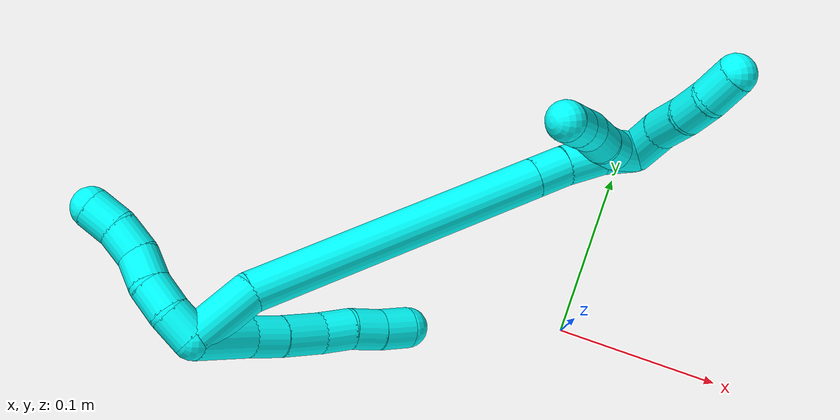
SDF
<sdf version="1.7">
 <world name="default">
  <model name="3">
   <static>0</static>
   <link name="3">
    <collision name="collision-cylinder-e_1_2_8">
     <pose>-0.001709 -0.00235 -0.019941 3.02429 -0.084888 -1.25235</pose>
     <geometry><cylinder><radius>0.0125</radius><length>0.040302</length></cylinder></geometry>
     <surface>
      <friction><ode><mu>1.16</mu><mu2>1.16</mu2><slip1>0</slip1><slip2>0</slip2></ode></friction>
      <contact><ode><kp>1e+06</kp><kd>1</kd><max_vel>0</max_vel><min_depth>0.001</min_depth></ode></contact>
     </surface>
    </collision>
    <visual name="visual-cylinder-e_1_2_8">
     <pose>-0.001709 -0.00235 -0.019941 3.02429 -0.084888 -1.25235</pose>
     <geometry><cylinder><radius>0.0125</radius><length>0.040302</length></cylinder></geometry>
     <material><ambient>0.003922 1 0.996078 1</ambient></material>
    </visual>
    <collision name="collision-cylinder-e_2_8_9">
     <pose>-0.002081 -0.00613 -0.050691 3.01007 0.121935 1.495</pose>
     <geometry><cylinder><radius>0.0125</radius><length>0.02197</length></cylinder></geometry>
     <surface>
      <friction><ode><mu>1.16</mu><mu2>1.16</mu2><slip1>0</slip1><slip2>0</slip2></ode></friction>
      <contact><ode><kp>1e+06</kp><kd>1</kd><max_vel>0</max_vel><min_depth>0.001</min_depth></ode></contact>
     </surface>
    </collision>
    <visual name="visual-cylinder-e_2_8_9">
     <pose>-0.002081 -0.00613 -0.050691 3.01007 0.121935 1.495</pose>
     <geometry><cylinder><radius>0.0125</radius><length>0.02197</length></cylinder></geometry>
     <material><ambient>0.003922 1 0.996078 1</ambient></material>
    </visual>
    <collision name="collision-cylinder-e_3_9_10">
     <pose>0.000437 -0.008472 -0.074947 3.07381 0.087482 1.8234</pose>
     <geometry><cylinder><radius>0.0125</radius><length>0.02706</length></cylinder></geometry>
     <surface>
      <friction><ode><mu>1.16</mu><mu2>1.16</mu2><slip1>0</slip1><slip2>0</slip2></ode></friction>
      <contact><ode><kp>1e+06</kp><kd>1</kd><max_vel>0</max_vel><min_depth>0.001</min_depth></ode></contact>
     </surface>
    </collision>
    <visual name="visual-cylinder-e_3_9_10">
     <pose>0.000437 -0.008472 -0.074947 3.07381 0.087482 1.8234</pose>
     <geometry><cylinder><radius>0.0125</radius><length>0.02706</length></cylinder></geometry>
     <material><ambient>0.003922 1 0.996078 1</ambient></material>
    </visual>
    <collision name="collision-cylinder-e_4_10_11">
     <pose>0.004113 -0.009259 -0.098358 -3.12887 0.245197 -3.03844</pose>
     <geometry><cylinder><radius>0.0125</radius><length>0.020544</length></cylinder></geometry>
     <surface>
      <friction><ode><mu>1.16</mu><mu2>1.16</mu2><slip1>0</slip1><slip2>0</slip2></ode></friction>
      <contact><ode><kp>1e+06</kp><kd>1</kd><max_vel>0</max_vel><min_depth>0.001</min_depth></ode></contact>
     </surface>
    </collision>
    <visual name="visual-cylinder-e_4_10_11">
     <pose>0.004113 -0.009259 -0.098358 -3.12887 0.245197 -3.03844</pose>
     <geometry><cylinder><radius>0.0125</radius><length>0.020544</length></cylinder></geometry>
     <material><ambient>0.003922 1 0.996078 1</ambient></material>
    </visual>
    <collision name="collision-cylinder-e_5_11_12">
     <pose>0.008364 -0.010678 -0.118048 2.98389 0.176599 1.68423</pose>
     <geometry><cylinder><radius>0.0125</radius><length>0.020006</length></cylinder></geometry>
     <surface>
      <friction><ode><mu>1.16</mu><mu2>1.16</mu2><slip1>0</slip1><slip2>0</slip2></ode></friction>
      <contact><ode><kp>1e+06</kp><kd>1</kd><max_vel>0</max_vel><min_depth>0.001</min_depth></ode></contact>
     </surface>
    </collision>
    <visual name="visual-cylinder-e_5_11_12">
     <pose>0.008364 -0.010678 -0.118048 2.98389 0.176599 1.68423</pose>
     <geometry><cylinder><radius>0.0125</radius><length>0.020006</length></cylinder></geometry>
     <material><ambient>0.003922 1 0.996078 1</ambient></material>
    </visual>
    <collision name="collision-cylinder-e_6_12_6">
     <pose>0.011864 -0.012813 -0.137662 3.08219 0.174154 2.48552</pose>
     <geometry><cylinder><radius>0.0125</radius><length>0.020118</length></cylinder></geometry>
     <surface>
      <friction><ode><mu>1.16</mu><mu2>1.16</mu2><slip1>0</slip1><slip2>0</slip2></ode></friction>
      <contact><ode><kp>1e+06</kp><kd>1</kd><max_vel>0</max_vel><min_depth>0.001</min_depth></ode></contact>
     </surface>
    </collision>
    <visual name="visual-cylinder-e_6_12_6">
     <pose>0.011864 -0.012813 -0.137662 3.08219 0.174154 2.48552</pose>
     <geometry><cylinder><radius>0.0125</radius><length>0.020118</length></cylinder></geometry>
     <material><ambient>0.003922 1 0.996078 1</ambient></material>
    </visual>
    <collision name="collision-cylinder-e_1_2_13">
     <pose>-0.004558 0.007847 0.004201 -1.07924 -0.473292 0.28689</pose>
     <geometry><cylinder><radius>0.0125</radius><length>0.02</length></cylinder></geometry>
     <surface>
      <friction><ode><mu>1.16</mu><mu2>1.16</mu2><slip1>0</slip1><slip2>0</slip2></ode></friction>
      <contact><ode><kp>1e+06</kp><kd>1</kd><max_vel>0</max_vel><min_depth>0.001</min_depth></ode></contact>
     </surface>
    </collision>
    <visual name="visual-cylinder-e_1_2_13">
     <pose>-0.004558 0.007847 0.004201 -1.07924 -0.473292 0.28689</pose>
     <geometry><cylinder><radius>0.0125</radius><length>0.02</length></cylinder></geometry>
     <material><ambient>0.003922 1 0.996078 1</ambient></material>
    </visual>
    <collision name="collision-cylinder-e_2_13_14">
     <pose>-0.014798 0.023633 0.010567 -1.30465 -0.60426 0.467456</pose>
     <geometry><cylinder><radius>0.0125</radius><length>0.02</length></cylinder></geometry>
     <surface>
      <friction><ode><mu>1.16</mu><mu2>1.16</mu2><slip1>0</slip1><slip2>0</slip2></ode></friction>
      <contact><ode><kp>1e+06</kp><kd>1</kd><max_vel>0</max_vel><min_depth>0.001</min_depth></ode></contact>
     </surface>
    </collision>
    <visual name="visual-cylinder-e_2_13_14">
     <pose>-0.014798 0.023633 0.010567 -1.30465 -0.60426 0.467456</pose>
     <geometry><cylinder><radius>0.0125</radius><length>0.02</length></cylinder></geometry>
     <material><ambient>0.003922 1 0.996078 1</ambient></material>
    </visual>
    <collision name="collision-cylinder-e_3_14_15">
     <pose>-0.026152 0.039796 0.012281 -1.62547 -0.603207 0.63494</pose>
     <geometry><cylinder><radius>0.0125</radius><length>0.02</length></cylinder></geometry>
     <surface>
      <friction><ode><mu>1.16</mu><mu2>1.16</mu2><slip1>0</slip1><slip2>0</slip2></ode></friction>
      <contact><ode><kp>1e+06</kp><kd>1</kd><max_vel>0</max_vel><min_depth>0.001</min_depth></ode></contact>
     </surface>
    </collision>
    <visual name="visual-cylinder-e_3_14_15">
     <pose>-0.026152 0.039796 0.012281 -1.62547 -0.603207 0.63494</pose>
     <geometry><cylinder><radius>0.0125</radius><length>0.02</length></cylinder></geometry>
     <material><ambient>0.003922 1 0.996078 1</ambient></material>
    </visual>
    <collision name="collision-cylinder-e_4_15_16">
     <pose>-0.037513 0.055824 0.014423 -1.2502 -0.605055 0.443064</pose>
     <geometry><cylinder><radius>0.0125</radius><length>0.02</length></cylinder></geometry>
     <surface>
      <friction><ode><mu>1.16</mu><mu2>1.16</mu2><slip1>0</slip1><slip2>0</slip2></ode></friction>
      <contact><ode><kp>1e+06</kp><kd>1</kd><max_vel>0</max_vel><min_depth>0.001</min_depth></ode></contact>
     </surface>
    </collision>
    <visual name="visual-cylinder-e_4_15_16">
     <pose>-0.037513 0.055824 0.014423 -1.2502 -0.605055 0.443064</pose>
     <geometry><cylinder><radius>0.0125</radius><length>0.02</length></cylinder></geometry>
     <material><ambient>0.003922 1 0.996078 1</ambient></material>
    </visual>
    <collision name="collision-cylinder-e_5_16_5">
     <pose>-0.049676 0.07003 0.021152 -0.997 -0.704271 0.394837</pose>
     <geometry><cylinder><radius>0.0125</radius><length>0.02</length></cylinder></geometry>
     <surface>
      <friction><ode><mu>1.16</mu><mu2>1.16</mu2><slip1>0</slip1><slip2>0</slip2></ode></friction>
      <contact><ode><kp>1e+06</kp><kd>1</kd><max_vel>0</max_vel><min_depth>0.001</min_depth></ode></contact>
     </surface>
    </collision>
    <visual name="visual-cylinder-e_5_16_5">
     <pose>-0.049676 0.07003 0.021152 -0.997 -0.704271 0.394837</pose>
     <geometry><cylinder><radius>0.0125</radius><length>0.02</length></cylinder></geometry>
     <material><ambient>0.003922 1 0.996078 1</ambient></material>
    </visual>
    <collision name="collision-cylinder-e_1_2_17">
     <pose>0.003498 0.011018 -0.018156 -2.59613 0.163252 -0.569094</pose>
     <geometry><cylinder><radius>0.0125</radius><length>0.043048</length></cylinder></geometry>
     <surface>
      <friction><ode><mu>1.16</mu><mu2>1.16</mu2><slip1>0</slip1><slip2>0</slip2></ode></friction>
      <contact><ode><kp>1e+06</kp><kd>1</kd><max_vel>0</max_vel><min_depth>0.001</min_depth></ode></contact>
     </surface>
    </collision>
    <visual name="visual-cylinder-e_1_2_17">
     <pose>0.003498 0.011018 -0.018156 -2.59613 0.163252 -0.569094</pose>
     <geometry><cylinder><radius>0.0125</radius><length>0.043048</length></cylinder></geometry>
     <material><ambient>0.003922 1 0.996078 1</ambient></material>
    </visual>
    <collision name="collision-cylinder-e_2_17_18">
     <pose>0.039583 0.047778 -0.121051 -2.84668 0.352576 -1.75155</pose>
     <geometry><cylinder><radius>0.0125</radius><length>0.188735</length></cylinder></geometry>
     <surface>
      <friction><ode><mu>1.16</mu><mu2>1.16</mu2><slip1>0</slip1><slip2>0</slip2></ode></friction>
      <contact><ode><kp>1e+06</kp><kd>1</kd><max_vel>0</max_vel><min_depth>0.001</min_depth></ode></contact>
     </surface>
    </collision>
    <visual name="visual-cylinder-e_2_17_18">
     <pose>0.039583 0.047778 -0.121051 -2.84668 0.352576 -1.75155</pose>
     <geometry><cylinder><radius>0.0125</radius><length>0.188735</length></cylinder></geometry>
     <material><ambient>0.003922 1 0.996078 1</ambient></material>
    </visual>
    <collision name="collision-cylinder-e_3_18_19">
     <pose>0.075865 0.076482 -0.215555 -2.84704 0.347453 -1.73806</pose>
     <geometry><cylinder><radius>0.0125</radius><length>0.021705</length></cylinder></geometry>
     <surface>
      <friction><ode><mu>1.16</mu><mu2>1.16</mu2><slip1>0</slip1><slip2>0</slip2></ode></friction>
      <contact><ode><kp>1e+06</kp><kd>1</kd><max_vel>0</max_vel><min_depth>0.001</min_depth></ode></contact>
     </surface>
    </collision>
    <visual name="visual-cylinder-e_3_18_19">
     <pose>0.075865 0.076482 -0.215555 -2.84704 0.347453 -1.73806</pose>
     <geometry><cylinder><radius>0.0125</radius><length>0.021705</length></cylinder></geometry>
     <material><ambient>0.003922 1 0.996078 1</ambient></material>
    </visual>
    <collision name="collision-cylinder-e_4_19_20">
     <pose>0.084515 0.081938 -0.237184 -2.93438 0.387918 -2.16788</pose>
     <geometry><cylinder><radius>0.0125</radius><length>0.026194</length></cylinder></geometry>
     <surface>
      <friction><ode><mu>1.16</mu><mu2>1.16</mu2><slip1>0</slip1><slip2>0</slip2></ode></friction>
      <contact><ode><kp>1e+06</kp><kd>1</kd><max_vel>0</max_vel><min_depth>0.001</min_depth></ode></contact>
     </surface>
    </collision>
    <visual name="visual-cylinder-e_4_19_20">
     <pose>0.084515 0.081938 -0.237184 -2.93438 0.387918 -2.16788</pose>
     <geometry><cylinder><radius>0.0125</radius><length>0.026194</length></cylinder></geometry>
     <material><ambient>0.003922 1 0.996078 1</ambient></material>
    </visual>
    <collision name="collision-cylinder-e_5_20_1">
     <pose>0.0957 0.084575 -0.257071 -3.12379 0.660311 -3.08966</pose>
     <geometry><cylinder><radius>0.0125</radius><length>0.020318</length></cylinder></geometry>
     <surface>
      <friction><ode><mu>1.16</mu><mu2>1.16</mu2><slip1>0</slip1><slip2>0</slip2></ode></friction>
      <contact><ode><kp>1e+06</kp><kd>1</kd><max_vel>0</max_vel><min_depth>0.001</min_depth></ode></contact>
     </surface>
    </collision>
    <visual name="visual-cylinder-e_5_20_1">
     <pose>0.0957 0.084575 -0.257071 -3.12379 0.660311 -3.08966</pose>
     <geometry><cylinder><radius>0.0125</radius><length>0.020318</length></cylinder></geometry>
     <material><ambient>0.003922 1 0.996078 1</ambient></material>
    </visual>
    <collision name="collision-cylinder-e_1_1_21">
     <pose>0.115101 0.091573 -0.262976 -1.27124 1.07201 -0.82606</pose>
     <geometry><cylinder><radius>0.0125</radius><length>0.029995</length></cylinder></geometry>
     <surface>
      <friction><ode><mu>1.16</mu><mu2>1.16</mu2><slip1>0</slip1><slip2>0</slip2></ode></friction>
      <contact><ode><kp>1e+06</kp><kd>1</kd><max_vel>0</max_vel><min_depth>0.001</min_depth></ode></contact>
     </surface>
    </collision>
    <visual name="visual-cylinder-e_1_1_21">
     <pose>0.115101 0.091573 -0.262976 -1.27124 1.07201 -0.82606</pose>
     <geometry><cylinder><radius>0.0125</radius><length>0.029995</length></cylinder></geometry>
     <material><ambient>0.003922 1 0.996078 1</ambient></material>
    </visual>
    <collision name="collision-cylinder-e_2_21_22">
     <pose>0.140584 0.102438 -0.258093 -0.967047 1.19401 -0.685681</pose>
     <geometry><cylinder><radius>0.0125</radius><length>0.026483</length></cylinder></geometry>
     <surface>
      <friction><ode><mu>1.16</mu><mu2>1.16</mu2><slip1>0</slip1><slip2>0</slip2></ode></friction>
      <contact><ode><kp>1e+06</kp><kd>1</kd><max_vel>0</max_vel><min_depth>0.001</min_depth></ode></contact>
     </surface>
    </collision>
    <visual name="visual-cylinder-e_2_21_22">
     <pose>0.140584 0.102438 -0.258093 -0.967047 1.19401 -0.685681</pose>
     <geometry><cylinder><radius>0.0125</radius><length>0.026483</length></cylinder></geometry>
     <material><ambient>0.003922 1 0.996078 1</ambient></material>
    </visual>
    <collision name="collision-cylinder-e_3_22_23">
     <pose>0.162413 0.111047 -0.254624 -1.41901 1.11609 -0.984072</pose>
     <geometry><cylinder><radius>0.0125</radius><length>0.021185</length></cylinder></geometry>
     <surface>
      <friction><ode><mu>1.16</mu><mu2>1.16</mu2><slip1>0</slip1><slip2>0</slip2></ode></friction>
      <contact><ode><kp>1e+06</kp><kd>1</kd><max_vel>0</max_vel><min_depth>0.001</min_depth></ode></contact>
     </surface>
    </collision>
    <visual name="visual-cylinder-e_3_22_23">
     <pose>0.162413 0.111047 -0.254624 -1.41901 1.11609 -0.984072</pose>
     <geometry><cylinder><radius>0.0125</radius><length>0.021185</length></cylinder></geometry>
     <material><ambient>0.003922 1 0.996078 1</ambient></material>
    </visual>
    <collision name="collision-cylinder-e_4_23_4">
     <pose>0.180793 0.122202 -0.255706 -1.83669 0.916831 -1.1469</pose>
     <geometry><cylinder><radius>0.0125</radius><length>0.022338</length></cylinder></geometry>
     <surface>
      <friction><ode><mu>1.16</mu><mu2>1.16</mu2><slip1>0</slip1><slip2>0</slip2></ode></friction>
      <contact><ode><kp>1e+06</kp><kd>1</kd><max_vel>0</max_vel><min_depth>0.001</min_depth></ode></contact>
     </surface>
    </collision>
    <visual name="visual-cylinder-e_4_23_4">
     <pose>0.180793 0.122202 -0.255706 -1.83669 0.916831 -1.1469</pose>
     <geometry><cylinder><radius>0.0125</radius><length>0.022338</length></cylinder></geometry>
     <material><ambient>0.003922 1 0.996078 1</ambient></material>
    </visual>
    <collision name="collision-cylinder-e_1_1_24">
     <pose>0.102585 0.086091 -0.255209 -0.137996 0.065458 -0.004525</pose>
     <geometry><cylinder><radius>0.0125</radius><length>0.02</length></cylinder></geometry>
     <surface>
      <friction><ode><mu>1.16</mu><mu2>1.16</mu2><slip1>0</slip1><slip2>0</slip2></ode></friction>
      <contact><ode><kp>1e+06</kp><kd>1</kd><max_vel>0</max_vel><min_depth>0.001</min_depth></ode></contact>
     </surface>
    </collision>
    <visual name="visual-cylinder-e_1_1_24">
     <pose>0.102585 0.086091 -0.255209 -0.137996 0.065458 -0.004525</pose>
     <geometry><cylinder><radius>0.0125</radius><length>0.02</length></cylinder></geometry>
     <material><ambient>0.003922 1 0.996078 1</ambient></material>
    </visual>
    <collision name="collision-cylinder-e_2_24_25">
     <pose>0.106863 0.089869 -0.236321 -0.261077 0.370864 -0.049245</pose>
     <geometry><cylinder><radius>0.0125</radius><length>0.02</length></cylinder></geometry>
     <surface>
      <friction><ode><mu>1.16</mu><mu2>1.16</mu2><slip1>0</slip1><slip2>0</slip2></ode></friction>
      <contact><ode><kp>1e+06</kp><kd>1</kd><max_vel>0</max_vel><min_depth>0.001</min_depth></ode></contact>
     </surface>
    </collision>
    <visual name="visual-cylinder-e_2_24_25">
     <pose>0.106863 0.089869 -0.236321 -0.261077 0.370864 -0.049245</pose>
     <geometry><cylinder><radius>0.0125</radius><length>0.02</length></cylinder></geometry>
     <material><ambient>0.003922 1 0.996078 1</ambient></material>
    </visual>
    <collision name="collision-cylinder-e_3_25_26">
     <pose>0.113233 0.096618 -0.218738 -0.468601 0.278057 -0.066774</pose>
     <geometry><cylinder><radius>0.0125</radius><length>0.02</length></cylinder></geometry>
     <surface>
      <friction><ode><mu>1.16</mu><mu2>1.16</mu2><slip1>0</slip1><slip2>0</slip2></ode></friction>
      <contact><ode><kp>1e+06</kp><kd>1</kd><max_vel>0</max_vel><min_depth>0.001</min_depth></ode></contact>
     </surface>
    </collision>
    <visual name="visual-cylinder-e_3_25_26">
     <pose>0.113233 0.096618 -0.218738 -0.468601 0.278057 -0.066774</pose>
     <geometry><cylinder><radius>0.0125</radius><length>0.02</length></cylinder></geometry>
     <material><ambient>0.003922 1 0.996078 1</ambient></material>
    </visual>
    <collision name="collision-cylinder-e_4_26_27">
     <pose>0.120177 0.102822 -0.201276 -0.206594 0.433387 -0.045636</pose>
     <geometry><cylinder><radius>0.0125</radius><length>0.02</length></cylinder></geometry>
     <surface>
      <friction><ode><mu>1.16</mu><mu2>1.16</mu2><slip1>0</slip1><slip2>0</slip2></ode></friction>
      <contact><ode><kp>1e+06</kp><kd>1</kd><max_vel>0</max_vel><min_depth>0.001</min_depth></ode></contact>
     </surface>
    </collision>
    <visual name="visual-cylinder-e_4_26_27">
     <pose>0.120177 0.102822 -0.201276 -0.206594 0.433387 -0.045636</pose>
     <geometry><cylinder><radius>0.0125</radius><length>0.02</length></cylinder></geometry>
     <material><ambient>0.003922 1 0.996078 1</ambient></material>
    </visual>
    <collision name="collision-cylinder-e_5_27_3">
     <pose>0.128627 0.106724 -0.183575 -0.227364 0.439035 -0.050936</pose>
     <geometry><cylinder><radius>0.0125</radius><length>0.02</length></cylinder></geometry>
     <surface>
      <friction><ode><mu>1.16</mu><mu2>1.16</mu2><slip1>0</slip1><slip2>0</slip2></ode></friction>
      <contact><ode><kp>1e+06</kp><kd>1</kd><max_vel>0</max_vel><min_depth>0.001</min_depth></ode></contact>
     </surface>
    </collision>
    <visual name="visual-cylinder-e_5_27_3">
     <pose>0.128627 0.106724 -0.183575 -0.227364 0.439035 -0.050936</pose>
     <geometry><cylinder><radius>0.0125</radius><length>0.02</length></cylinder></geometry>
     <material><ambient>0.003922 1 0.996078 1</ambient></material>
    </visual>
    <collision name="collision-sphere-3">
     <pose>0.132878 0.108765 -0.174756 0 -0 0</pose>
     <geometry><sphere><radius>0.0125</radius></sphere></geometry>
     <surface>
      <friction><ode><mu>1.16</mu><mu2>1.16</mu2><slip1>0</slip1><slip2>0</slip2></ode></friction>
      <contact><ode><kp>1e+06</kp><kd>1</kd><max_vel>0</max_vel><min_depth>0.001</min_depth></ode></contact>
     </surface>
    </collision>
    <visual name="visual-sphere-3">
     <pose>0.132878 0.108765 -0.174756 0 -0 0</pose>
     <geometry><sphere><radius>0.0125</radius></sphere></geometry>
     <material><ambient>0.003922 1 0.996078 1</ambient></material>
    </visual>
    <collision name="collision-sphere-27">
     <pose>0.124376 0.104684 -0.192393 0 -0 0</pose>
     <geometry><sphere><radius>0.0125</radius></sphere></geometry>
     <surface>
      <friction><ode><mu>1.16</mu><mu2>1.16</mu2><slip1>0</slip1><slip2>0</slip2></ode></friction>
      <contact><ode><kp>1e+06</kp><kd>1</kd><max_vel>0</max_vel><min_depth>0.001</min_depth></ode></contact>
     </surface>
    </collision>
    <visual name="visual-sphere-27">
     <pose>0.124376 0.104684 -0.192393 0 -0 0</pose>
     <geometry><sphere><radius>0.0125</radius></sphere></geometry>
     <material><ambient>0.003922 1 0.996078 1</ambient></material>
    </visual>
    <collision name="collision-sphere-26">
     <pose>0.115977 0.100961 -0.210158 0 -0 0</pose>
     <geometry><sphere><radius>0.0125</radius></sphere></geometry>
     <surface>
      <friction><ode><mu>1.16</mu><mu2>1.16</mu2><slip1>0</slip1><slip2>0</slip2></ode></friction>
      <contact><ode><kp>1e+06</kp><kd>1</kd><max_vel>0</max_vel><min_depth>0.001</min_depth></ode></contact>
     </surface>
    </collision>
    <visual name="visual-sphere-26">
     <pose>0.115977 0.100961 -0.210158 0 -0 0</pose>
     <geometry><sphere><radius>0.0125</radius></sphere></geometry>
     <material><ambient>0.003922 1 0.996078 1</ambient></material>
    </visual>
    <collision name="collision-sphere-25">
     <pose>0.110488 0.092275 -0.227317 0 -0 0</pose>
     <geometry><sphere><radius>0.0125</radius></sphere></geometry>
     <surface>
      <friction><ode><mu>1.16</mu><mu2>1.16</mu2><slip1>0</slip1><slip2>0</slip2></ode></friction>
      <contact><ode><kp>1e+06</kp><kd>1</kd><max_vel>0</max_vel><min_depth>0.001</min_depth></ode></contact>
     </surface>
    </collision>
    <visual name="visual-sphere-25">
     <pose>0.110488 0.092275 -0.227317 0 -0 0</pose>
     <geometry><sphere><radius>0.0125</radius></sphere></geometry>
     <material><ambient>0.003922 1 0.996078 1</ambient></material>
    </visual>
    <collision name="collision-sphere-24">
     <pose>0.103239 0.087463 -0.245326 0 -0 0</pose>
     <geometry><sphere><radius>0.0125</radius></sphere></geometry>
     <surface>
      <friction><ode><mu>1.16</mu><mu2>1.16</mu2><slip1>0</slip1><slip2>0</slip2></ode></friction>
      <contact><ode><kp>1e+06</kp><kd>1</kd><max_vel>0</max_vel><min_depth>0.001</min_depth></ode></contact>
     </surface>
    </collision>
    <visual name="visual-sphere-24">
     <pose>0.103239 0.087463 -0.245326 0 -0 0</pose>
     <geometry><sphere><radius>0.0125</radius></sphere></geometry>
     <material><ambient>0.003922 1 0.996078 1</ambient></material>
    </visual>
    <collision name="collision-sphere-4">
     <pose>0.189658 0.128757 -0.257491 0 -0 0</pose>
     <geometry><sphere><radius>0.0125</radius></sphere></geometry>
     <surface>
      <friction><ode><mu>1.16</mu><mu2>1.16</mu2><slip1>0</slip1><slip2>0</slip2></ode></friction>
      <contact><ode><kp>1e+06</kp><kd>1</kd><max_vel>0</max_vel><min_depth>0.001</min_depth></ode></contact>
     </surface>
    </collision>
    <visual name="visual-sphere-4">
     <pose>0.189658 0.128757 -0.257491 0 -0 0</pose>
     <geometry><sphere><radius>0.0125</radius></sphere></geometry>
     <material><ambient>0.003922 1 0.996078 1</ambient></material>
    </visual>
    <collision name="collision-sphere-23">
     <pose>0.171929 0.115646 -0.25392 0 -0 0</pose>
     <geometry><sphere><radius>0.0125</radius></sphere></geometry>
     <surface>
      <friction><ode><mu>1.16</mu><mu2>1.16</mu2><slip1>0</slip1><slip2>0</slip2></ode></friction>
      <contact><ode><kp>1e+06</kp><kd>1</kd><max_vel>0</max_vel><min_depth>0.001</min_depth></ode></contact>
     </surface>
    </collision>
    <visual name="visual-sphere-23">
     <pose>0.171929 0.115646 -0.25392 0 -0 0</pose>
     <geometry><sphere><radius>0.0125</radius></sphere></geometry>
     <material><ambient>0.003922 1 0.996078 1</ambient></material>
    </visual>
    <collision name="collision-sphere-22">
     <pose>0.152897 0.106449 -0.255327 0 -0 0</pose>
     <geometry><sphere><radius>0.0125</radius></sphere></geometry>
     <surface>
      <friction><ode><mu>1.16</mu><mu2>1.16</mu2><slip1>0</slip1><slip2>0</slip2></ode></friction>
      <contact><ode><kp>1e+06</kp><kd>1</kd><max_vel>0</max_vel><min_depth>0.001</min_depth></ode></contact>
     </surface>
    </collision>
    <visual name="visual-sphere-22">
     <pose>0.152897 0.106449 -0.255327 0 -0 0</pose>
     <geometry><sphere><radius>0.0125</radius></sphere></geometry>
     <material><ambient>0.003922 1 0.996078 1</ambient></material>
    </visual>
    <collision name="collision-sphere-21">
     <pose>0.128271 0.098427 -0.260859 0 -0 0</pose>
     <geometry><sphere><radius>0.0125</radius></sphere></geometry>
     <surface>
      <friction><ode><mu>1.16</mu><mu2>1.16</mu2><slip1>0</slip1><slip2>0</slip2></ode></friction>
      <contact><ode><kp>1e+06</kp><kd>1</kd><max_vel>0</max_vel><min_depth>0.001</min_depth></ode></contact>
     </surface>
    </collision>
    <visual name="visual-sphere-21">
     <pose>0.128271 0.098427 -0.260859 0 -0 0</pose>
     <geometry><sphere><radius>0.0125</radius></sphere></geometry>
     <material><ambient>0.003922 1 0.996078 1</ambient></material>
    </visual>
    <collision name="collision-sphere-1">
     <pose>0.101931 0.084718 -0.265093 0 -0 0</pose>
     <geometry><sphere><radius>0.0125</radius></sphere></geometry>
     <surface>
      <friction><ode><mu>1.16</mu><mu2>1.16</mu2><slip1>0</slip1><slip2>0</slip2></ode></friction>
      <contact><ode><kp>1e+06</kp><kd>1</kd><max_vel>0</max_vel><min_depth>0.001</min_depth></ode></contact>
     </surface>
    </collision>
    <visual name="visual-sphere-1">
     <pose>0.101931 0.084718 -0.265093 0 -0 0</pose>
     <geometry><sphere><radius>0.0125</radius></sphere></geometry>
     <material><ambient>0.003922 1 0.996078 1</ambient></material>
    </visual>
    <collision name="collision-sphere-12">
     <pose>0.010121 -0.012225 -0.127773 0 -0 0</pose>
     <geometry><sphere><radius>0.0125</radius></sphere></geometry>
     <surface>
      <friction><ode><mu>1.16</mu><mu2>1.16</mu2><slip1>0</slip1><slip2>0</slip2></ode></friction>
      <contact><ode><kp>1e+06</kp><kd>1</kd><max_vel>0</max_vel><min_depth>0.001</min_depth></ode></contact>
     </surface>
    </collision>
    <visual name="visual-sphere-12">
     <pose>0.010121 -0.012225 -0.127773 0 -0 0</pose>
     <geometry><sphere><radius>0.0125</radius></sphere></geometry>
     <material><ambient>0.003922 1 0.996078 1</ambient></material>
    </visual>
    <collision name="collision-sphere-11">
     <pose>0.006606 -0.009132 -0.108322 0 -0 0</pose>
     <geometry><sphere><radius>0.0125</radius></sphere></geometry>
     <surface>
      <friction><ode><mu>1.16</mu><mu2>1.16</mu2><slip1>0</slip1><slip2>0</slip2></ode></friction>
      <contact><ode><kp>1e+06</kp><kd>1</kd><max_vel>0</max_vel><min_depth>0.001</min_depth></ode></contact>
     </surface>
    </collision>
    <visual name="visual-sphere-11">
     <pose>0.006606 -0.009132 -0.108322 0 -0 0</pose>
     <geometry><sphere><radius>0.0125</radius></sphere></geometry>
     <material><ambient>0.003922 1 0.996078 1</ambient></material>
    </visual>
    <collision name="collision-sphere-10">
     <pose>0.001619 -0.009385 -0.088394 0 -0 0</pose>
     <geometry><sphere><radius>0.0125</radius></sphere></geometry>
     <surface>
      <friction><ode><mu>1.16</mu><mu2>1.16</mu2><slip1>0</slip1><slip2>0</slip2></ode></friction>
      <contact><ode><kp>1e+06</kp><kd>1</kd><max_vel>0</max_vel><min_depth>0.001</min_depth></ode></contact>
     </surface>
    </collision>
    <visual name="visual-sphere-10">
     <pose>0.001619 -0.009385 -0.088394 0 -0 0</pose>
     <geometry><sphere><radius>0.0125</radius></sphere></geometry>
     <material><ambient>0.003922 1 0.996078 1</ambient></material>
    </visual>
    <collision name="collision-sphere-9">
     <pose>-0.000745 -0.00756 -0.0615 0 -0 0</pose>
     <geometry><sphere><radius>0.0125</radius></sphere></geometry>
     <surface>
      <friction><ode><mu>1.16</mu><mu2>1.16</mu2><slip1>0</slip1><slip2>0</slip2></ode></friction>
      <contact><ode><kp>1e+06</kp><kd>1</kd><max_vel>0</max_vel><min_depth>0.001</min_depth></ode></contact>
     </surface>
    </collision>
    <visual name="visual-sphere-9">
     <pose>-0.000745 -0.00756 -0.0615 0 -0 0</pose>
     <geometry><sphere><radius>0.0125</radius></sphere></geometry>
     <material><ambient>0.003922 1 0.996078 1</ambient></material>
    </visual>
    <collision name="collision-sphere-2">
     <geometry><sphere><radius>0.0125</radius></sphere></geometry>
     <surface>
      <friction><ode><mu>1.16</mu><mu2>1.16</mu2><slip1>0</slip1><slip2>0</slip2></ode></friction>
      <contact><ode><kp>1e+06</kp><kd>1</kd><max_vel>0</max_vel><min_depth>0.001</min_depth></ode></contact>
     </surface>
    </collision>
    <visual name="visual-sphere-2">
     <geometry><sphere><radius>0.0125</radius></sphere></geometry>
     <material><ambient>0.003922 1 0.996078 1</ambient></material>
    </visual>
    <collision name="collision-sphere-19">
     <pose>0.079561 0.079444 -0.22532 0 -0 0</pose>
     <geometry><sphere><radius>0.0125</radius></sphere></geometry>
     <surface>
      <friction><ode><mu>1.16</mu><mu2>1.16</mu2><slip1>0</slip1><slip2>0</slip2></ode></friction>
      <contact><ode><kp>1e+06</kp><kd>1</kd><max_vel>0</max_vel><min_depth>0.001</min_depth></ode></contact>
     </surface>
    </collision>
    <visual name="visual-sphere-19">
     <pose>0.079561 0.079444 -0.22532 0 -0 0</pose>
     <geometry><sphere><radius>0.0125</radius></sphere></geometry>
     <material><ambient>0.003922 1 0.996078 1</ambient></material>
    </visual>
    <collision name="collision-sphere-8">
     <pose>-0.003417 -0.0047 -0.039881 0 -0 0</pose>
     <geometry><sphere><radius>0.0125</radius></sphere></geometry>
     <surface>
      <friction><ode><mu>1.16</mu><mu2>1.16</mu2><slip1>0</slip1><slip2>0</slip2></ode></friction>
      <contact><ode><kp>1e+06</kp><kd>1</kd><max_vel>0</max_vel><min_depth>0.001</min_depth></ode></contact>
     </surface>
    </collision>
    <visual name="visual-sphere-8">
     <pose>-0.003417 -0.0047 -0.039881 0 -0 0</pose>
     <geometry><sphere><radius>0.0125</radius></sphere></geometry>
     <material><ambient>0.003922 1 0.996078 1</ambient></material>
    </visual>
    <collision name="collision-sphere-6">
     <pose>0.013607 -0.013401 -0.147551 0 -0 0</pose>
     <geometry><sphere><radius>0.0125</radius></sphere></geometry>
     <surface>
      <friction><ode><mu>1.16</mu><mu2>1.16</mu2><slip1>0</slip1><slip2>0</slip2></ode></friction>
      <contact><ode><kp>1e+06</kp><kd>1</kd><max_vel>0</max_vel><min_depth>0.001</min_depth></ode></contact>
     </surface>
    </collision>
    <visual name="visual-sphere-6">
     <pose>0.013607 -0.013401 -0.147551 0 -0 0</pose>
     <geometry><sphere><radius>0.0125</radius></sphere></geometry>
     <material><ambient>0.003922 1 0.996078 1</ambient></material>
    </visual>
    <collision name="collision-sphere-13">
     <pose>-0.009116 0.015694 0.008402 0 -0 0</pose>
     <geometry><sphere><radius>0.0125</radius></sphere></geometry>
     <surface>
      <friction><ode><mu>1.16</mu><mu2>1.16</mu2><slip1>0</slip1><slip2>0</slip2></ode></friction>
      <contact><ode><kp>1e+06</kp><kd>1</kd><max_vel>0</max_vel><min_depth>0.001</min_depth></ode></contact>
     </surface>
    </collision>
    <visual name="visual-sphere-13">
     <pose>-0.009116 0.015694 0.008402 0 -0 0</pose>
     <geometry><sphere><radius>0.0125</radius></sphere></geometry>
     <material><ambient>0.003922 1 0.996078 1</ambient></material>
    </visual>
    <collision name="collision-sphere-14">
     <pose>-0.020479 0.031573 0.012731 0 -0 0</pose>
     <geometry><sphere><radius>0.0125</radius></sphere></geometry>
     <surface>
      <friction><ode><mu>1.16</mu><mu2>1.16</mu2><slip1>0</slip1><slip2>0</slip2></ode></friction>
      <contact><ode><kp>1e+06</kp><kd>1</kd><max_vel>0</max_vel><min_depth>0.001</min_depth></ode></contact>
     </surface>
    </collision>
    <visual name="visual-sphere-14">
     <pose>-0.020479 0.031573 0.012731 0 -0 0</pose>
     <geometry><sphere><radius>0.0125</radius></sphere></geometry>
     <material><ambient>0.003922 1 0.996078 1</ambient></material>
    </visual>
    <collision name="collision-sphere-15">
     <pose>-0.031825 0.048019 0.011831 0 -0 0</pose>
     <geometry><sphere><radius>0.0125</radius></sphere></geometry>
     <surface>
      <friction><ode><mu>1.16</mu><mu2>1.16</mu2><slip1>0</slip1><slip2>0</slip2></ode></friction>
      <contact><ode><kp>1e+06</kp><kd>1</kd><max_vel>0</max_vel><min_depth>0.001</min_depth></ode></contact>
     </surface>
    </collision>
    <visual name="visual-sphere-15">
     <pose>-0.031825 0.048019 0.011831 0 -0 0</pose>
     <geometry><sphere><radius>0.0125</radius></sphere></geometry>
     <material><ambient>0.003922 1 0.996078 1</ambient></material>
    </visual>
    <collision name="collision-sphere-16">
     <pose>-0.043201 0.06363 0.017015 0 -0 0</pose>
     <geometry><sphere><radius>0.0125</radius></sphere></geometry>
     <surface>
      <friction><ode><mu>1.16</mu><mu2>1.16</mu2><slip1>0</slip1><slip2>0</slip2></ode></friction>
      <contact><ode><kp>1e+06</kp><kd>1</kd><max_vel>0</max_vel><min_depth>0.001</min_depth></ode></contact>
     </surface>
    </collision>
    <visual name="visual-sphere-16">
     <pose>-0.043201 0.06363 0.017015 0 -0 0</pose>
     <geometry><sphere><radius>0.0125</radius></sphere></geometry>
     <material><ambient>0.003922 1 0.996078 1</ambient></material>
    </visual>
    <collision name="collision-sphere-5">
     <pose>-0.056151 0.07643 0.025288 0 -0 0</pose>
     <geometry><sphere><radius>0.0125</radius></sphere></geometry>
     <surface>
      <friction><ode><mu>1.16</mu><mu2>1.16</mu2><slip1>0</slip1><slip2>0</slip2></ode></friction>
      <contact><ode><kp>1e+06</kp><kd>1</kd><max_vel>0</max_vel><min_depth>0.001</min_depth></ode></contact>
     </surface>
    </collision>
    <visual name="visual-sphere-5">
     <pose>-0.056151 0.07643 0.025288 0 -0 0</pose>
     <geometry><sphere><radius>0.0125</radius></sphere></geometry>
     <material><ambient>0.003922 1 0.996078 1</ambient></material>
    </visual>
    <collision name="collision-sphere-17">
     <pose>0.006997 0.022037 -0.036312 0 -0 0</pose>
     <geometry><sphere><radius>0.0125</radius></sphere></geometry>
     <surface>
      <friction><ode><mu>1.16</mu><mu2>1.16</mu2><slip1>0</slip1><slip2>0</slip2></ode></friction>
      <contact><ode><kp>1e+06</kp><kd>1</kd><max_vel>0</max_vel><min_depth>0.001</min_depth></ode></contact>
     </surface>
    </collision>
    <visual name="visual-sphere-17">
     <pose>0.006997 0.022037 -0.036312 0 -0 0</pose>
     <geometry><sphere><radius>0.0125</radius></sphere></geometry>
     <material><ambient>0.003922 1 0.996078 1</ambient></material>
    </visual>
    <collision name="collision-sphere-18">
     <pose>0.07217 0.073519 -0.20579 0 -0 0</pose>
     <geometry><sphere><radius>0.0125</radius></sphere></geometry>
     <surface>
      <friction><ode><mu>1.16</mu><mu2>1.16</mu2><slip1>0</slip1><slip2>0</slip2></ode></friction>
      <contact><ode><kp>1e+06</kp><kd>1</kd><max_vel>0</max_vel><min_depth>0.001</min_depth></ode></contact>
     </surface>
    </collision>
    <visual name="visual-sphere-18">
     <pose>0.07217 0.073519 -0.20579 0 -0 0</pose>
     <geometry><sphere><radius>0.0125</radius></sphere></geometry>
     <material><ambient>0.003922 1 0.996078 1</ambient></material>
    </visual>
    <collision name="collision-sphere-20">
     <pose>0.089469 0.084432 -0.249048 0 -0 0</pose>
     <geometry><sphere><radius>0.0125</radius></sphere></geometry>
     <surface>
      <friction><ode><mu>1.16</mu><mu2>1.16</mu2><slip1>0</slip1><slip2>0</slip2></ode></friction>
      <contact><ode><kp>1e+06</kp><kd>1</kd><max_vel>0</max_vel><min_depth>0.001</min_depth></ode></contact>
     </surface>
    </collision>
    <visual name="visual-sphere-20">
     <pose>0.089469 0.084432 -0.249048 0 -0 0</pose>
     <geometry><sphere><radius>0.0125</radius></sphere></geometry>
     <material><ambient>0.003922 1 0.996078 1</ambient></material>
    </visual>
    <inertial>
     <pose>0.049659 0.050697 -0.129758 0 -0 0</pose>
     <mass>0.75</mass>
     <inertia>
      <ixx>-0.000597</ixx>
      <ixy>0</ixy>
      <ixz>0</ixz>
      <iyy>-0.000345</iyy>
      <iyz>0</iyz>
      <izz>-0.0004</izz>
     </inertia>
    </inertial>
   </link>
   <pose>-0.200404 -0.082827 0.104801 0.315013 -0.840169 0.164065</pose>
  </model>
 </world>
</sdf>
